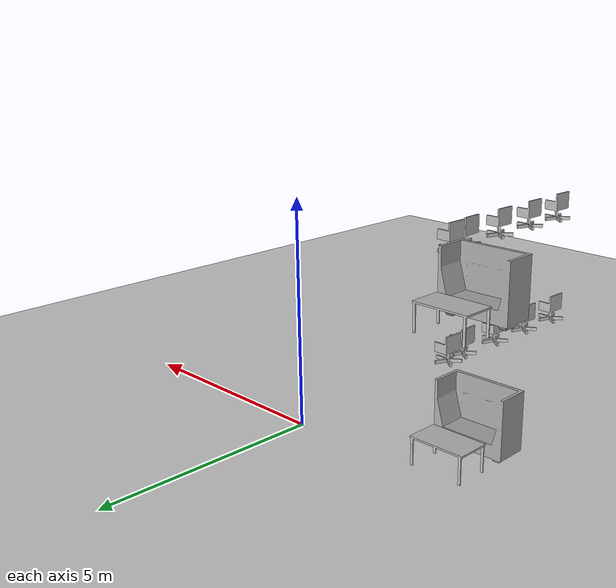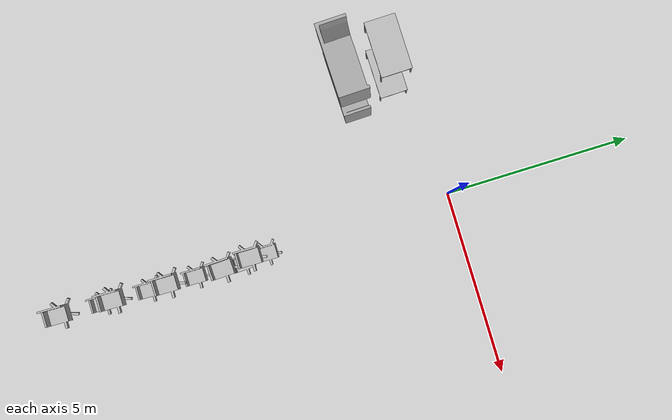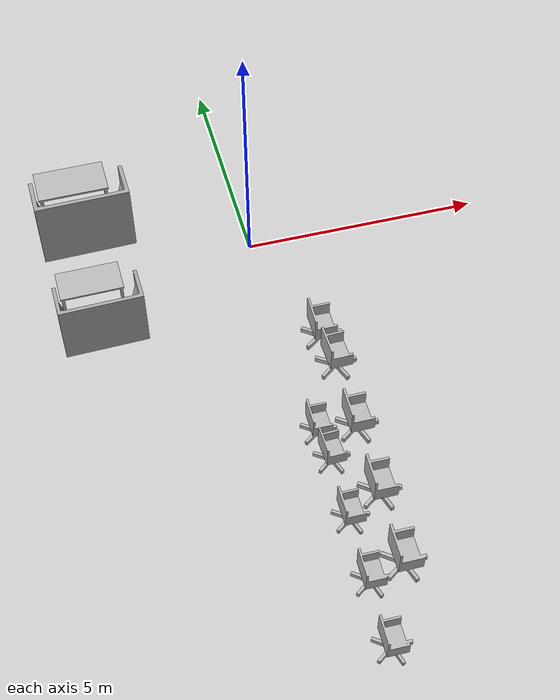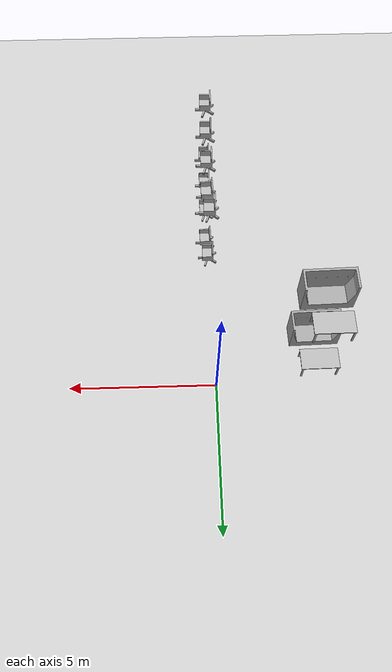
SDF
<sdf version="1.6">
 <world name="default">
  <model name="ground_plane">
   <static>1</static>
   <link name="link">
    <collision name="collision">
     <geometry><plane><normal>0 0 1</normal><size>100 100</size></plane></geometry>
     <surface><friction><ode><mu>100</mu><mu2>50</mu2></ode></friction></surface>
    </collision>
    <visual name="visual">
     <cast_shadows>0</cast_shadows>
     <geometry><plane><normal>0 0 1</normal><size>100 100</size></plane></geometry>
     <material>
      <script><uri>file://media/materials/scripts/gazebo.material</uri><name>Gazebo/Grey</name></script>
     </material>
    </visual>
   </link>
  </model>
  <include>
   <uri>model://rs_gazebo/models/ss_hq4/413_meeting_chair</uri>
   <name>'413_meeting_chair_3'</name>
   <pose>0.081497 -7.01654 0.281792 -1e-06 2e-06 1.56307</pose>
  </include>
  <include>
   <uri>model://rs_gazebo/models/ss_hq4/413_meeting_chair</uri>
   <name>'413_meeting_chair_4_clone'</name>
   <pose>0.058897 -8.30282 0.281792 0 -0 1.55151</pose>
  </include>
  <include>
   <uri>model://rs_gazebo/models/ss_hq4/413_meeting_chair</uri>
   <name>'413_meeting_chair_4_clone_0'</name>
   <pose>0.045568 -5.03866 0.281792 0 -0 1.55331</pose>
  </include>
  <include>
   <uri>model://rs_gazebo/models/ss_hq4/413_meeting_chair</uri>
   <name>'413_meeting_chair_4_clone_clone_0'</name>
   <pose>0.035102 -9.56899 0.281792 0 -0 1.55151</pose>
  </include>
  <include>
   <uri>model://rs_gazebo/models/ss_hq4/413_meeting_chair</uri>
   <name>'413_meeting_chair_5'</name>
   <pose>0.112145 -5.70863 0.281792 -2e-06 3e-06 1.60424</pose>
  </include>
  <include>
   <uri>model://rs_gazebo/models/ss_hq4/403_sofa</uri>
   <name>403_sofa</name>
   <pose>-3.42091 -1.67887 0.474968 -1e-06 -0 -3.11622</pose>
  </include>
  <include>
   <uri>model://rs_gazebo/models/ss_hq4/403_table</uri>
   <name>403_table</name>
   <pose>-3.51471 -0.633251 0.370989 0 0 -3.12695</pose>
  </include>
  <include>
   <uri>model://rs_gazebo/models/ss_hq4/413_meeting_chair</uri>
   <name>'413_meeting_chair_3_4'</name>
   <pose>0.081497 -7.01654 3.181792 -1e-06 2e-06 1.56307</pose>
  </include>
  <include>
   <uri>model://rs_gazebo/models/ss_hq4/413_meeting_chair</uri>
   <name>'413_meeting_chair_4_clone_4'</name>
   <pose>0.058897 -8.30282 3.181792 0 -0 1.55151</pose>
  </include>
  <include>
   <uri>model://rs_gazebo/models/ss_hq4/413_meeting_chair</uri>
   <name>'413_meeting_chair_4_clone_0_4'</name>
   <pose>0.045568 -5.03866 3.181792 0 -0 1.55331</pose>
  </include>
  <include>
   <uri>model://rs_gazebo/models/ss_hq4/413_meeting_chair</uri>
   <name>'413_meeting_chair_4_clone_clone_0_4'</name>
   <pose>0.035102 -9.56899 3.181792 0 -0 1.55151</pose>
  </include>
  <include>
   <uri>model://rs_gazebo/models/ss_hq4/413_meeting_chair</uri>
   <name>'413_meeting_chair_5_4'</name>
   <pose>0.112145 -5.70863 3.181792 -2e-06 3e-06 1.60424</pose>
  </include>
  <include>
   <uri>model://rs_gazebo/models/ss_hq4/403_sofa</uri>
   <name>403_sofa_4</name>
   <pose>-3.42091 -1.67887 3.274968 -1e-06 -0 -3.11622</pose>
  </include>
  <include>
   <uri>model://rs_gazebo/models/ss_hq4/403_table</uri>
   <name>403_table_4</name>
   <pose>-3.51471 -0.633251 3.170989 0 0 -3.12695</pose>
  </include>
 </world>
</sdf>
